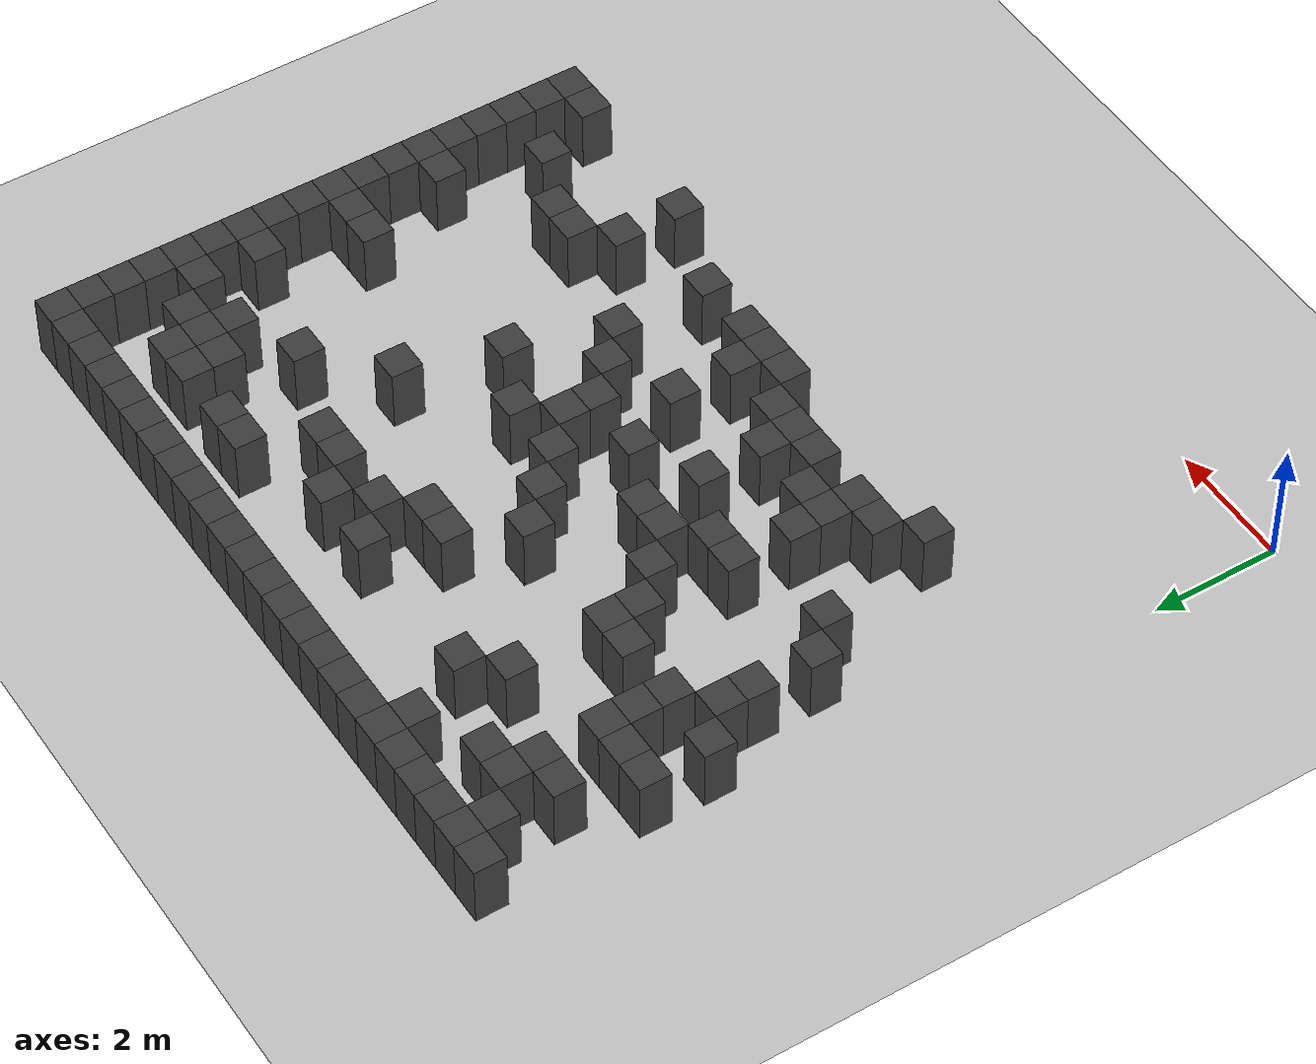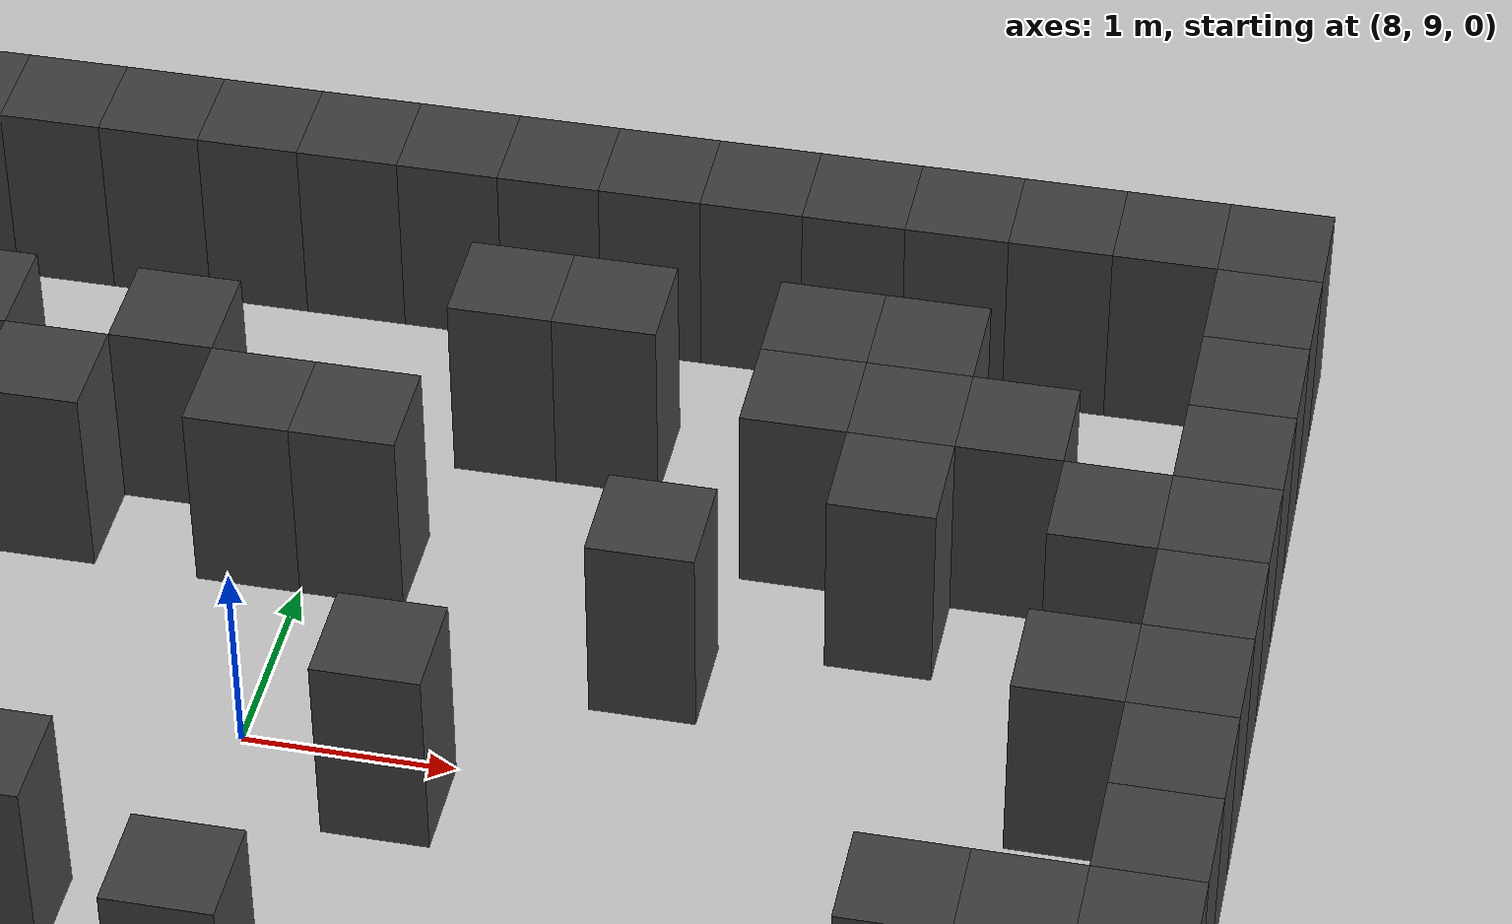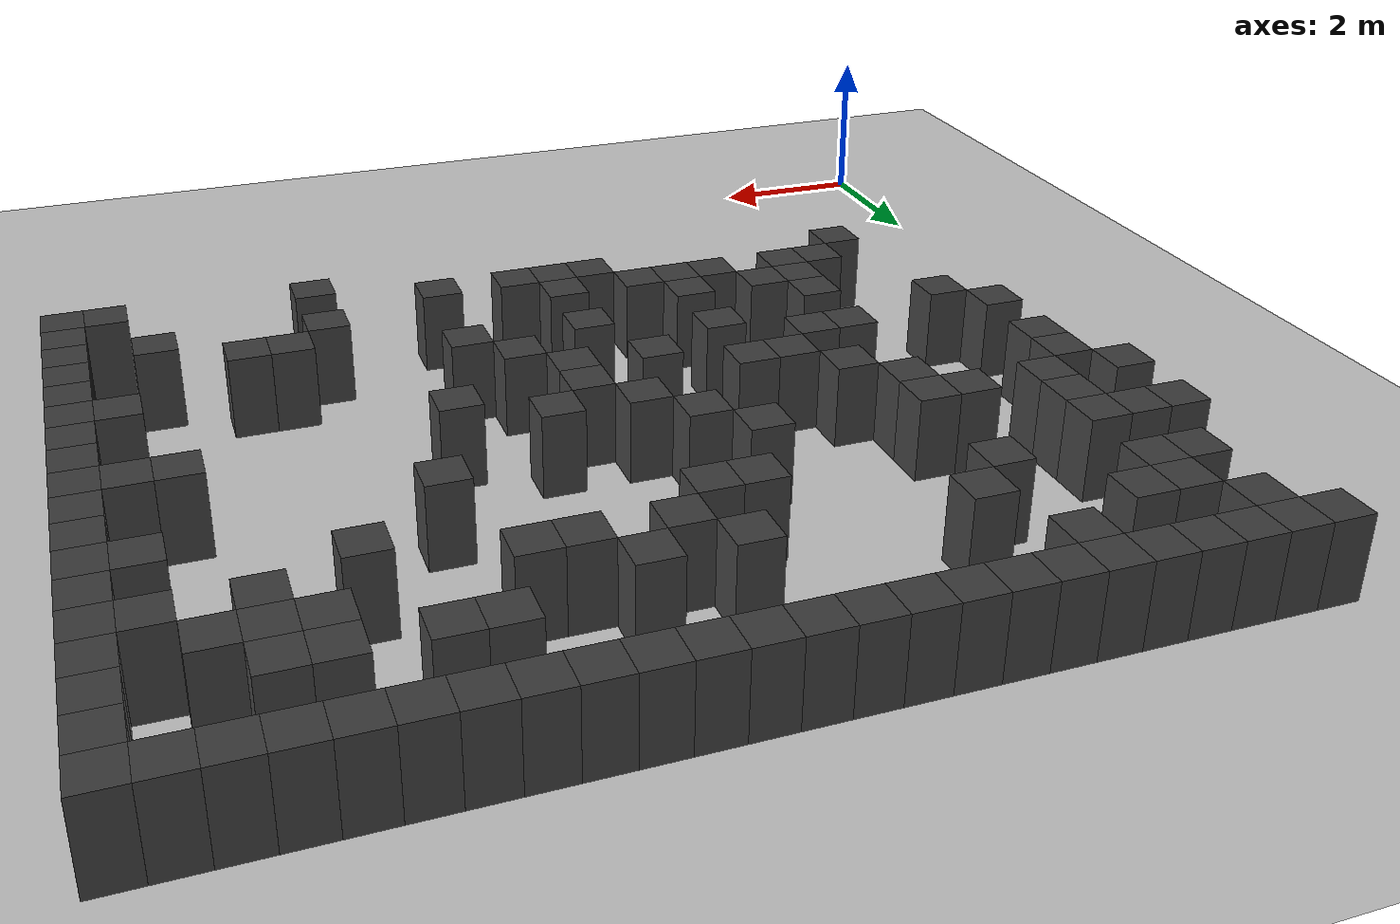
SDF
<sdf version="1.7">
 <world name="map_4822">
  <model name="ground_plane">
   <static>true</static>
   <link name="link">
    <collision name="collision">
     <geometry><plane><normal>0 0 1</normal><size>200 200</size></plane></geometry>
    </collision>
    <visual name="visual">
     <geometry><plane><normal>0 0 1</normal><size>200 200</size></plane></geometry>
     <material><ambient>0.8 0.8 0.8 1</ambient><diffuse>0.8 0.8 0.8 1</diffuse></material>
    </visual>
   </link>
  </model>
  <model name="maze_environment">
   <static>true</static>
   <link name="wall_26">
    <pose>0.750 12.250 0.500 0 0 0</pose>
    <collision name="col"><geometry><box><size>0.5 0.5 1.0</size></box></geometry></collision>
    <visual name="vis">
     <geometry><box><size>0.5 0.5 1.0</size></box></geometry>
     <material><ambient>0.15 0.15 0.15 1</ambient><diffuse>0.25 0.25 0.25 1</diffuse></material>
    </visual>
   </link>
   <link name="wall_27">
    <pose>1.250 12.250 0.500 0 0 0</pose>
    <collision name="col"><geometry><box><size>0.5 0.5 1.0</size></box></geometry></collision>
    <visual name="vis">
     <geometry><box><size>0.5 0.5 1.0</size></box></geometry>
     <material><ambient>0.15 0.15 0.15 1</ambient><diffuse>0.25 0.25 0.25 1</diffuse></material>
    </visual>
   </link>
   <link name="wall_28">
    <pose>1.750 12.250 0.500 0 0 0</pose>
    <collision name="col"><geometry><box><size>0.5 0.5 1.0</size></box></geometry></collision>
    <visual name="vis">
     <geometry><box><size>0.5 0.5 1.0</size></box></geometry>
     <material><ambient>0.15 0.15 0.15 1</ambient><diffuse>0.25 0.25 0.25 1</diffuse></material>
    </visual>
   </link>
   <link name="wall_29">
    <pose>2.250 12.250 0.500 0 0 0</pose>
    <collision name="col"><geometry><box><size>0.5 0.5 1.0</size></box></geometry></collision>
    <visual name="vis">
     <geometry><box><size>0.5 0.5 1.0</size></box></geometry>
     <material><ambient>0.15 0.15 0.15 1</ambient><diffuse>0.25 0.25 0.25 1</diffuse></material>
    </visual>
   </link>
   <link name="wall_30">
    <pose>2.750 12.250 0.500 0 0 0</pose>
    <collision name="col"><geometry><box><size>0.5 0.5 1.0</size></box></geometry></collision>
    <visual name="vis">
     <geometry><box><size>0.5 0.5 1.0</size></box></geometry>
     <material><ambient>0.15 0.15 0.15 1</ambient><diffuse>0.25 0.25 0.25 1</diffuse></material>
    </visual>
   </link>
   <link name="wall_31">
    <pose>3.250 12.250 0.500 0 0 0</pose>
    <collision name="col"><geometry><box><size>0.5 0.5 1.0</size></box></geometry></collision>
    <visual name="vis">
     <geometry><box><size>0.5 0.5 1.0</size></box></geometry>
     <material><ambient>0.15 0.15 0.15 1</ambient><diffuse>0.25 0.25 0.25 1</diffuse></material>
    </visual>
   </link>
   <link name="wall_32">
    <pose>3.750 12.250 0.500 0 0 0</pose>
    <collision name="col"><geometry><box><size>0.5 0.5 1.0</size></box></geometry></collision>
    <visual name="vis">
     <geometry><box><size>0.5 0.5 1.0</size></box></geometry>
     <material><ambient>0.15 0.15 0.15 1</ambient><diffuse>0.25 0.25 0.25 1</diffuse></material>
    </visual>
   </link>
   <link name="wall_33">
    <pose>4.250 12.250 0.500 0 0 0</pose>
    <collision name="col"><geometry><box><size>0.5 0.5 1.0</size></box></geometry></collision>
    <visual name="vis">
     <geometry><box><size>0.5 0.5 1.0</size></box></geometry>
     <material><ambient>0.15 0.15 0.15 1</ambient><diffuse>0.25 0.25 0.25 1</diffuse></material>
    </visual>
   </link>
   <link name="wall_34">
    <pose>4.750 12.250 0.500 0 0 0</pose>
    <collision name="col"><geometry><box><size>0.5 0.5 1.0</size></box></geometry></collision>
    <visual name="vis">
     <geometry><box><size>0.5 0.5 1.0</size></box></geometry>
     <material><ambient>0.15 0.15 0.15 1</ambient><diffuse>0.25 0.25 0.25 1</diffuse></material>
    </visual>
   </link>
   <link name="wall_35">
    <pose>5.250 12.250 0.500 0 0 0</pose>
    <collision name="col"><geometry><box><size>0.5 0.5 1.0</size></box></geometry></collision>
    <visual name="vis">
     <geometry><box><size>0.5 0.5 1.0</size></box></geometry>
     <material><ambient>0.15 0.15 0.15 1</ambient><diffuse>0.25 0.25 0.25 1</diffuse></material>
    </visual>
   </link>
   <link name="wall_36">
    <pose>5.750 12.250 0.500 0 0 0</pose>
    <collision name="col"><geometry><box><size>0.5 0.5 1.0</size></box></geometry></collision>
    <visual name="vis">
     <geometry><box><size>0.5 0.5 1.0</size></box></geometry>
     <material><ambient>0.15 0.15 0.15 1</ambient><diffuse>0.25 0.25 0.25 1</diffuse></material>
    </visual>
   </link>
   <link name="wall_37">
    <pose>6.250 12.250 0.500 0 0 0</pose>
    <collision name="col"><geometry><box><size>0.5 0.5 1.0</size></box></geometry></collision>
    <visual name="vis">
     <geometry><box><size>0.5 0.5 1.0</size></box></geometry>
     <material><ambient>0.15 0.15 0.15 1</ambient><diffuse>0.25 0.25 0.25 1</diffuse></material>
    </visual>
   </link>
   <link name="wall_38">
    <pose>6.750 12.250 0.500 0 0 0</pose>
    <collision name="col"><geometry><box><size>0.5 0.5 1.0</size></box></geometry></collision>
    <visual name="vis">
     <geometry><box><size>0.5 0.5 1.0</size></box></geometry>
     <material><ambient>0.15 0.15 0.15 1</ambient><diffuse>0.25 0.25 0.25 1</diffuse></material>
    </visual>
   </link>
   <link name="wall_39">
    <pose>7.250 12.250 0.500 0 0 0</pose>
    <collision name="col"><geometry><box><size>0.5 0.5 1.0</size></box></geometry></collision>
    <visual name="vis">
     <geometry><box><size>0.5 0.5 1.0</size></box></geometry>
     <material><ambient>0.15 0.15 0.15 1</ambient><diffuse>0.25 0.25 0.25 1</diffuse></material>
    </visual>
   </link>
   <link name="wall_40">
    <pose>7.750 12.250 0.500 0 0 0</pose>
    <collision name="col"><geometry><box><size>0.5 0.5 1.0</size></box></geometry></collision>
    <visual name="vis">
     <geometry><box><size>0.5 0.5 1.0</size></box></geometry>
     <material><ambient>0.15 0.15 0.15 1</ambient><diffuse>0.25 0.25 0.25 1</diffuse></material>
    </visual>
   </link>
   <link name="wall_41">
    <pose>8.250 12.250 0.500 0 0 0</pose>
    <collision name="col"><geometry><box><size>0.5 0.5 1.0</size></box></geometry></collision>
    <visual name="vis">
     <geometry><box><size>0.5 0.5 1.0</size></box></geometry>
     <material><ambient>0.15 0.15 0.15 1</ambient><diffuse>0.25 0.25 0.25 1</diffuse></material>
    </visual>
   </link>
   <link name="wall_42">
    <pose>8.750 12.250 0.500 0 0 0</pose>
    <collision name="col"><geometry><box><size>0.5 0.5 1.0</size></box></geometry></collision>
    <visual name="vis">
     <geometry><box><size>0.5 0.5 1.0</size></box></geometry>
     <material><ambient>0.15 0.15 0.15 1</ambient><diffuse>0.25 0.25 0.25 1</diffuse></material>
    </visual>
   </link>
   <link name="wall_43">
    <pose>9.250 12.250 0.500 0 0 0</pose>
    <collision name="col"><geometry><box><size>0.5 0.5 1.0</size></box></geometry></collision>
    <visual name="vis">
     <geometry><box><size>0.5 0.5 1.0</size></box></geometry>
     <material><ambient>0.15 0.15 0.15 1</ambient><diffuse>0.25 0.25 0.25 1</diffuse></material>
    </visual>
   </link>
   <link name="wall_44">
    <pose>9.750 12.250 0.500 0 0 0</pose>
    <collision name="col"><geometry><box><size>0.5 0.5 1.0</size></box></geometry></collision>
    <visual name="vis">
     <geometry><box><size>0.5 0.5 1.0</size></box></geometry>
     <material><ambient>0.15 0.15 0.15 1</ambient><diffuse>0.25 0.25 0.25 1</diffuse></material>
    </visual>
   </link>
   <link name="wall_45">
    <pose>10.250 12.250 0.500 0 0 0</pose>
    <collision name="col"><geometry><box><size>0.5 0.5 1.0</size></box></geometry></collision>
    <visual name="vis">
     <geometry><box><size>0.5 0.5 1.0</size></box></geometry>
     <material><ambient>0.15 0.15 0.15 1</ambient><diffuse>0.25 0.25 0.25 1</diffuse></material>
    </visual>
   </link>
   <link name="wall_46">
    <pose>10.750 12.250 0.500 0 0 0</pose>
    <collision name="col"><geometry><box><size>0.5 0.5 1.0</size></box></geometry></collision>
    <visual name="vis">
     <geometry><box><size>0.5 0.5 1.0</size></box></geometry>
     <material><ambient>0.15 0.15 0.15 1</ambient><diffuse>0.25 0.25 0.25 1</diffuse></material>
    </visual>
   </link>
   <link name="wall_47">
    <pose>11.250 12.250 0.500 0 0 0</pose>
    <collision name="col"><geometry><box><size>0.5 0.5 1.0</size></box></geometry></collision>
    <visual name="vis">
     <geometry><box><size>0.5 0.5 1.0</size></box></geometry>
     <material><ambient>0.15 0.15 0.15 1</ambient><diffuse>0.25 0.25 0.25 1</diffuse></material>
    </visual>
   </link>
   <link name="wall_48">
    <pose>11.750 12.250 0.500 0 0 0</pose>
    <collision name="col"><geometry><box><size>0.5 0.5 1.0</size></box></geometry></collision>
    <visual name="vis">
     <geometry><box><size>0.5 0.5 1.0</size></box></geometry>
     <material><ambient>0.15 0.15 0.15 1</ambient><diffuse>0.25 0.25 0.25 1</diffuse></material>
    </visual>
   </link>
   <link name="wall_49">
    <pose>12.250 12.250 0.500 0 0 0</pose>
    <collision name="col"><geometry><box><size>0.5 0.5 1.0</size></box></geometry></collision>
    <visual name="vis">
     <geometry><box><size>0.5 0.5 1.0</size></box></geometry>
     <material><ambient>0.15 0.15 0.15 1</ambient><diffuse>0.25 0.25 0.25 1</diffuse></material>
    </visual>
   </link>
   <link name="wall_54">
    <pose>1.250 11.750 0.500 0 0 0</pose>
    <collision name="col"><geometry><box><size>0.5 0.5 1.0</size></box></geometry></collision>
    <visual name="vis">
     <geometry><box><size>0.5 0.5 1.0</size></box></geometry>
     <material><ambient>0.15 0.15 0.15 1</ambient><diffuse>0.25 0.25 0.25 1</diffuse></material>
    </visual>
   </link>
   <link name="wall_55">
    <pose>3.250 11.750 0.500 0 0 0</pose>
    <collision name="col"><geometry><box><size>0.5 0.5 1.0</size></box></geometry></collision>
    <visual name="vis">
     <geometry><box><size>0.5 0.5 1.0</size></box></geometry>
     <material><ambient>0.15 0.15 0.15 1</ambient><diffuse>0.25 0.25 0.25 1</diffuse></material>
    </visual>
   </link>
   <link name="wall_56">
    <pose>12.250 11.750 0.500 0 0 0</pose>
    <collision name="col"><geometry><box><size>0.5 0.5 1.0</size></box></geometry></collision>
    <visual name="vis">
     <geometry><box><size>0.5 0.5 1.0</size></box></geometry>
     <material><ambient>0.15 0.15 0.15 1</ambient><diffuse>0.25 0.25 0.25 1</diffuse></material>
    </visual>
   </link>
   <link name="wall_66">
    <pose>1.750 11.250 0.500 0 0 0</pose>
    <collision name="col"><geometry><box><size>0.5 0.5 1.0</size></box></geometry></collision>
    <visual name="vis">
     <geometry><box><size>0.5 0.5 1.0</size></box></geometry>
     <material><ambient>0.15 0.15 0.15 1</ambient><diffuse>0.25 0.25 0.25 1</diffuse></material>
    </visual>
   </link>
   <link name="wall_67">
    <pose>2.250 11.250 0.500 0 0 0</pose>
    <collision name="col"><geometry><box><size>0.5 0.5 1.0</size></box></geometry></collision>
    <visual name="vis">
     <geometry><box><size>0.5 0.5 1.0</size></box></geometry>
     <material><ambient>0.15 0.15 0.15 1</ambient><diffuse>0.25 0.25 0.25 1</diffuse></material>
    </visual>
   </link>
   <link name="wall_68">
    <pose>8.750 11.250 0.500 0 0 0</pose>
    <collision name="col"><geometry><box><size>0.5 0.5 1.0</size></box></geometry></collision>
    <visual name="vis">
     <geometry><box><size>0.5 0.5 1.0</size></box></geometry>
     <material><ambient>0.15 0.15 0.15 1</ambient><diffuse>0.25 0.25 0.25 1</diffuse></material>
    </visual>
   </link>
   <link name="wall_69">
    <pose>9.250 11.250 0.500 0 0 0</pose>
    <collision name="col"><geometry><box><size>0.5 0.5 1.0</size></box></geometry></collision>
    <visual name="vis">
     <geometry><box><size>0.5 0.5 1.0</size></box></geometry>
     <material><ambient>0.15 0.15 0.15 1</ambient><diffuse>0.25 0.25 0.25 1</diffuse></material>
    </visual>
   </link>
   <link name="wall_70">
    <pose>10.250 11.250 0.500 0 0 0</pose>
    <collision name="col"><geometry><box><size>0.5 0.5 1.0</size></box></geometry></collision>
    <visual name="vis">
     <geometry><box><size>0.5 0.5 1.0</size></box></geometry>
     <material><ambient>0.15 0.15 0.15 1</ambient><diffuse>0.25 0.25 0.25 1</diffuse></material>
    </visual>
   </link>
   <link name="wall_71">
    <pose>10.750 11.250 0.500 0 0 0</pose>
    <collision name="col"><geometry><box><size>0.5 0.5 1.0</size></box></geometry></collision>
    <visual name="vis">
     <geometry><box><size>0.5 0.5 1.0</size></box></geometry>
     <material><ambient>0.15 0.15 0.15 1</ambient><diffuse>0.25 0.25 0.25 1</diffuse></material>
    </visual>
   </link>
   <link name="wall_72">
    <pose>12.250 11.250 0.500 0 0 0</pose>
    <collision name="col"><geometry><box><size>0.5 0.5 1.0</size></box></geometry></collision>
    <visual name="vis">
     <geometry><box><size>0.5 0.5 1.0</size></box></geometry>
     <material><ambient>0.15 0.15 0.15 1</ambient><diffuse>0.25 0.25 0.25 1</diffuse></material>
    </visual>
   </link>
   <link name="wall_80">
    <pose>1.250 10.750 0.500 0 0 0</pose>
    <collision name="col"><geometry><box><size>0.5 0.5 1.0</size></box></geometry></collision>
    <visual name="vis">
     <geometry><box><size>0.5 0.5 1.0</size></box></geometry>
     <material><ambient>0.15 0.15 0.15 1</ambient><diffuse>0.25 0.25 0.25 1</diffuse></material>
    </visual>
   </link>
   <link name="wall_81">
    <pose>1.750 10.750 0.500 0 0 0</pose>
    <collision name="col"><geometry><box><size>0.5 0.5 1.0</size></box></geometry></collision>
    <visual name="vis">
     <geometry><box><size>0.5 0.5 1.0</size></box></geometry>
     <material><ambient>0.15 0.15 0.15 1</ambient><diffuse>0.25 0.25 0.25 1</diffuse></material>
    </visual>
   </link>
   <link name="wall_82">
    <pose>3.750 10.750 0.500 0 0 0</pose>
    <collision name="col"><geometry><box><size>0.5 0.5 1.0</size></box></geometry></collision>
    <visual name="vis">
     <geometry><box><size>0.5 0.5 1.0</size></box></geometry>
     <material><ambient>0.15 0.15 0.15 1</ambient><diffuse>0.25 0.25 0.25 1</diffuse></material>
    </visual>
   </link>
   <link name="wall_83">
    <pose>6.250 10.750 0.500 0 0 0</pose>
    <collision name="col"><geometry><box><size>0.5 0.5 1.0</size></box></geometry></collision>
    <visual name="vis">
     <geometry><box><size>0.5 0.5 1.0</size></box></geometry>
     <material><ambient>0.15 0.15 0.15 1</ambient><diffuse>0.25 0.25 0.25 1</diffuse></material>
    </visual>
   </link>
   <link name="wall_84">
    <pose>7.250 10.750 0.500 0 0 0</pose>
    <collision name="col"><geometry><box><size>0.5 0.5 1.0</size></box></geometry></collision>
    <visual name="vis">
     <geometry><box><size>0.5 0.5 1.0</size></box></geometry>
     <material><ambient>0.15 0.15 0.15 1</ambient><diffuse>0.25 0.25 0.25 1</diffuse></material>
    </visual>
   </link>
   <link name="wall_85">
    <pose>10.250 10.750 0.500 0 0 0</pose>
    <collision name="col"><geometry><box><size>0.5 0.5 1.0</size></box></geometry></collision>
    <visual name="vis">
     <geometry><box><size>0.5 0.5 1.0</size></box></geometry>
     <material><ambient>0.15 0.15 0.15 1</ambient><diffuse>0.25 0.25 0.25 1</diffuse></material>
    </visual>
   </link>
   <link name="wall_86">
    <pose>10.750 10.750 0.500 0 0 0</pose>
    <collision name="col"><geometry><box><size>0.5 0.5 1.0</size></box></geometry></collision>
    <visual name="vis">
     <geometry><box><size>0.5 0.5 1.0</size></box></geometry>
     <material><ambient>0.15 0.15 0.15 1</ambient><diffuse>0.25 0.25 0.25 1</diffuse></material>
    </visual>
   </link>
   <link name="wall_87">
    <pose>11.250 10.750 0.500 0 0 0</pose>
    <collision name="col"><geometry><box><size>0.5 0.5 1.0</size></box></geometry></collision>
    <visual name="vis">
     <geometry><box><size>0.5 0.5 1.0</size></box></geometry>
     <material><ambient>0.15 0.15 0.15 1</ambient><diffuse>0.25 0.25 0.25 1</diffuse></material>
    </visual>
   </link>
   <link name="wall_88">
    <pose>12.250 10.750 0.500 0 0 0</pose>
    <collision name="col"><geometry><box><size>0.5 0.5 1.0</size></box></geometry></collision>
    <visual name="vis">
     <geometry><box><size>0.5 0.5 1.0</size></box></geometry>
     <material><ambient>0.15 0.15 0.15 1</ambient><diffuse>0.25 0.25 0.25 1</diffuse></material>
    </visual>
   </link>
   <link name="wall_95">
    <pose>3.250 10.250 0.500 0 0 0</pose>
    <collision name="col"><geometry><box><size>0.5 0.5 1.0</size></box></geometry></collision>
    <visual name="vis">
     <geometry><box><size>0.5 0.5 1.0</size></box></geometry>
     <material><ambient>0.15 0.15 0.15 1</ambient><diffuse>0.25 0.25 0.25 1</diffuse></material>
    </visual>
   </link>
   <link name="wall_96">
    <pose>6.750 10.250 0.500 0 0 0</pose>
    <collision name="col"><geometry><box><size>0.5 0.5 1.0</size></box></geometry></collision>
    <visual name="vis">
     <geometry><box><size>0.5 0.5 1.0</size></box></geometry>
     <material><ambient>0.15 0.15 0.15 1</ambient><diffuse>0.25 0.25 0.25 1</diffuse></material>
    </visual>
   </link>
   <link name="wall_97">
    <pose>7.750 10.250 0.500 0 0 0</pose>
    <collision name="col"><geometry><box><size>0.5 0.5 1.0</size></box></geometry></collision>
    <visual name="vis">
     <geometry><box><size>0.5 0.5 1.0</size></box></geometry>
     <material><ambient>0.15 0.15 0.15 1</ambient><diffuse>0.25 0.25 0.25 1</diffuse></material>
    </visual>
   </link>
   <link name="wall_98">
    <pose>8.250 10.250 0.500 0 0 0</pose>
    <collision name="col"><geometry><box><size>0.5 0.5 1.0</size></box></geometry></collision>
    <visual name="vis">
     <geometry><box><size>0.5 0.5 1.0</size></box></geometry>
     <material><ambient>0.15 0.15 0.15 1</ambient><diffuse>0.25 0.25 0.25 1</diffuse></material>
    </visual>
   </link>
   <link name="wall_99">
    <pose>10.750 10.250 0.500 0 0 0</pose>
    <collision name="col"><geometry><box><size>0.5 0.5 1.0</size></box></geometry></collision>
    <visual name="vis">
     <geometry><box><size>0.5 0.5 1.0</size></box></geometry>
     <material><ambient>0.15 0.15 0.15 1</ambient><diffuse>0.25 0.25 0.25 1</diffuse></material>
    </visual>
   </link>
   <link name="wall_100">
    <pose>11.750 10.250 0.500 0 0 0</pose>
    <collision name="col"><geometry><box><size>0.5 0.5 1.0</size></box></geometry></collision>
    <visual name="vis">
     <geometry><box><size>0.5 0.5 1.0</size></box></geometry>
     <material><ambient>0.15 0.15 0.15 1</ambient><diffuse>0.25 0.25 0.25 1</diffuse></material>
    </visual>
   </link>
   <link name="wall_101">
    <pose>12.250 10.250 0.500 0 0 0</pose>
    <collision name="col"><geometry><box><size>0.5 0.5 1.0</size></box></geometry></collision>
    <visual name="vis">
     <geometry><box><size>0.5 0.5 1.0</size></box></geometry>
     <material><ambient>0.15 0.15 0.15 1</ambient><diffuse>0.25 0.25 0.25 1</diffuse></material>
    </visual>
   </link>
   <link name="wall_109">
    <pose>0.750 9.750 0.500 0 0 0</pose>
    <collision name="col"><geometry><box><size>0.5 0.5 1.0</size></box></geometry></collision>
    <visual name="vis">
     <geometry><box><size>0.5 0.5 1.0</size></box></geometry>
     <material><ambient>0.15 0.15 0.15 1</ambient><diffuse>0.25 0.25 0.25 1</diffuse></material>
    </visual>
   </link>
   <link name="wall_110">
    <pose>1.250 9.750 0.500 0 0 0</pose>
    <collision name="col"><geometry><box><size>0.5 0.5 1.0</size></box></geometry></collision>
    <visual name="vis">
     <geometry><box><size>0.5 0.5 1.0</size></box></geometry>
     <material><ambient>0.15 0.15 0.15 1</ambient><diffuse>0.25 0.25 0.25 1</diffuse></material>
    </visual>
   </link>
   <link name="wall_111">
    <pose>1.750 9.750 0.500 0 0 0</pose>
    <collision name="col"><geometry><box><size>0.5 0.5 1.0</size></box></geometry></collision>
    <visual name="vis">
     <geometry><box><size>0.5 0.5 1.0</size></box></geometry>
     <material><ambient>0.15 0.15 0.15 1</ambient><diffuse>0.25 0.25 0.25 1</diffuse></material>
    </visual>
   </link>
   <link name="wall_112">
    <pose>5.750 9.750 0.500 0 0 0</pose>
    <collision name="col"><geometry><box><size>0.5 0.5 1.0</size></box></geometry></collision>
    <visual name="vis">
     <geometry><box><size>0.5 0.5 1.0</size></box></geometry>
     <material><ambient>0.15 0.15 0.15 1</ambient><diffuse>0.25 0.25 0.25 1</diffuse></material>
    </visual>
   </link>
   <link name="wall_113">
    <pose>6.250 9.750 0.500 0 0 0</pose>
    <collision name="col"><geometry><box><size>0.5 0.5 1.0</size></box></geometry></collision>
    <visual name="vis">
     <geometry><box><size>0.5 0.5 1.0</size></box></geometry>
     <material><ambient>0.15 0.15 0.15 1</ambient><diffuse>0.25 0.25 0.25 1</diffuse></material>
    </visual>
   </link>
   <link name="wall_114">
    <pose>9.750 9.750 0.500 0 0 0</pose>
    <collision name="col"><geometry><box><size>0.5 0.5 1.0</size></box></geometry></collision>
    <visual name="vis">
     <geometry><box><size>0.5 0.5 1.0</size></box></geometry>
     <material><ambient>0.15 0.15 0.15 1</ambient><diffuse>0.25 0.25 0.25 1</diffuse></material>
    </visual>
   </link>
   <link name="wall_115">
    <pose>12.250 9.750 0.500 0 0 0</pose>
    <collision name="col"><geometry><box><size>0.5 0.5 1.0</size></box></geometry></collision>
    <visual name="vis">
     <geometry><box><size>0.5 0.5 1.0</size></box></geometry>
     <material><ambient>0.15 0.15 0.15 1</ambient><diffuse>0.25 0.25 0.25 1</diffuse></material>
    </visual>
   </link>
   <link name="wall_122">
    <pose>1.750 9.250 0.500 0 0 0</pose>
    <collision name="col"><geometry><box><size>0.5 0.5 1.0</size></box></geometry></collision>
    <visual name="vis">
     <geometry><box><size>0.5 0.5 1.0</size></box></geometry>
     <material><ambient>0.15 0.15 0.15 1</ambient><diffuse>0.25 0.25 0.25 1</diffuse></material>
    </visual>
   </link>
   <link name="wall_123">
    <pose>11.750 9.250 0.500 0 0 0</pose>
    <collision name="col"><geometry><box><size>0.5 0.5 1.0</size></box></geometry></collision>
    <visual name="vis">
     <geometry><box><size>0.5 0.5 1.0</size></box></geometry>
     <material><ambient>0.15 0.15 0.15 1</ambient><diffuse>0.25 0.25 0.25 1</diffuse></material>
    </visual>
   </link>
   <link name="wall_124">
    <pose>12.250 9.250 0.500 0 0 0</pose>
    <collision name="col"><geometry><box><size>0.5 0.5 1.0</size></box></geometry></collision>
    <visual name="vis">
     <geometry><box><size>0.5 0.5 1.0</size></box></geometry>
     <material><ambient>0.15 0.15 0.15 1</ambient><diffuse>0.25 0.25 0.25 1</diffuse></material>
    </visual>
   </link>
   <link name="wall_135">
    <pose>0.750 8.750 0.500 0 0 0</pose>
    <collision name="col"><geometry><box><size>0.5 0.5 1.0</size></box></geometry></collision>
    <visual name="vis">
     <geometry><box><size>0.5 0.5 1.0</size></box></geometry>
     <material><ambient>0.15 0.15 0.15 1</ambient><diffuse>0.25 0.25 0.25 1</diffuse></material>
    </visual>
   </link>
   <link name="wall_136">
    <pose>1.750 8.750 0.500 0 0 0</pose>
    <collision name="col"><geometry><box><size>0.5 0.5 1.0</size></box></geometry></collision>
    <visual name="vis">
     <geometry><box><size>0.5 0.5 1.0</size></box></geometry>
     <material><ambient>0.15 0.15 0.15 1</ambient><diffuse>0.25 0.25 0.25 1</diffuse></material>
    </visual>
   </link>
   <link name="wall_137">
    <pose>2.750 8.750 0.500 0 0 0</pose>
    <collision name="col"><geometry><box><size>0.5 0.5 1.0</size></box></geometry></collision>
    <visual name="vis">
     <geometry><box><size>0.5 0.5 1.0</size></box></geometry>
     <material><ambient>0.15 0.15 0.15 1</ambient><diffuse>0.25 0.25 0.25 1</diffuse></material>
    </visual>
   </link>
   <link name="wall_138">
    <pose>3.250 8.750 0.500 0 0 0</pose>
    <collision name="col"><geometry><box><size>0.5 0.5 1.0</size></box></geometry></collision>
    <visual name="vis">
     <geometry><box><size>0.5 0.5 1.0</size></box></geometry>
     <material><ambient>0.15 0.15 0.15 1</ambient><diffuse>0.25 0.25 0.25 1</diffuse></material>
    </visual>
   </link>
   <link name="wall_139">
    <pose>5.250 8.750 0.500 0 0 0</pose>
    <collision name="col"><geometry><box><size>0.5 0.5 1.0</size></box></geometry></collision>
    <visual name="vis">
     <geometry><box><size>0.5 0.5 1.0</size></box></geometry>
     <material><ambient>0.15 0.15 0.15 1</ambient><diffuse>0.25 0.25 0.25 1</diffuse></material>
    </visual>
   </link>
   <link name="wall_140">
    <pose>8.750 8.750 0.500 0 0 0</pose>
    <collision name="col"><geometry><box><size>0.5 0.5 1.0</size></box></geometry></collision>
    <visual name="vis">
     <geometry><box><size>0.5 0.5 1.0</size></box></geometry>
     <material><ambient>0.15 0.15 0.15 1</ambient><diffuse>0.25 0.25 0.25 1</diffuse></material>
    </visual>
   </link>
   <link name="wall_141">
    <pose>12.250 8.750 0.500 0 0 0</pose>
    <collision name="col"><geometry><box><size>0.5 0.5 1.0</size></box></geometry></collision>
    <visual name="vis">
     <geometry><box><size>0.5 0.5 1.0</size></box></geometry>
     <material><ambient>0.15 0.15 0.15 1</ambient><diffuse>0.25 0.25 0.25 1</diffuse></material>
    </visual>
   </link>
   <link name="wall_147">
    <pose>1.250 8.250 0.500 0 0 0</pose>
    <collision name="col"><geometry><box><size>0.5 0.5 1.0</size></box></geometry></collision>
    <visual name="vis">
     <geometry><box><size>0.5 0.5 1.0</size></box></geometry>
     <material><ambient>0.15 0.15 0.15 1</ambient><diffuse>0.25 0.25 0.25 1</diffuse></material>
    </visual>
   </link>
   <link name="wall_148">
    <pose>3.250 8.250 0.500 0 0 0</pose>
    <collision name="col"><geometry><box><size>0.5 0.5 1.0</size></box></geometry></collision>
    <visual name="vis">
     <geometry><box><size>0.5 0.5 1.0</size></box></geometry>
     <material><ambient>0.15 0.15 0.15 1</ambient><diffuse>0.25 0.25 0.25 1</diffuse></material>
    </visual>
   </link>
   <link name="wall_149">
    <pose>5.750 8.250 0.500 0 0 0</pose>
    <collision name="col"><geometry><box><size>0.5 0.5 1.0</size></box></geometry></collision>
    <visual name="vis">
     <geometry><box><size>0.5 0.5 1.0</size></box></geometry>
     <material><ambient>0.15 0.15 0.15 1</ambient><diffuse>0.25 0.25 0.25 1</diffuse></material>
    </visual>
   </link>
   <link name="wall_150">
    <pose>12.250 8.250 0.500 0 0 0</pose>
    <collision name="col"><geometry><box><size>0.5 0.5 1.0</size></box></geometry></collision>
    <visual name="vis">
     <geometry><box><size>0.5 0.5 1.0</size></box></geometry>
     <material><ambient>0.15 0.15 0.15 1</ambient><diffuse>0.25 0.25 0.25 1</diffuse></material>
    </visual>
   </link>
   <link name="wall_155">
    <pose>1.250 7.750 0.500 0 0 0</pose>
    <collision name="col"><geometry><box><size>0.5 0.5 1.0</size></box></geometry></collision>
    <visual name="vis">
     <geometry><box><size>0.5 0.5 1.0</size></box></geometry>
     <material><ambient>0.15 0.15 0.15 1</ambient><diffuse>0.25 0.25 0.25 1</diffuse></material>
    </visual>
   </link>
   <link name="wall_156">
    <pose>3.750 7.750 0.500 0 0 0</pose>
    <collision name="col"><geometry><box><size>0.5 0.5 1.0</size></box></geometry></collision>
    <visual name="vis">
     <geometry><box><size>0.5 0.5 1.0</size></box></geometry>
     <material><ambient>0.15 0.15 0.15 1</ambient><diffuse>0.25 0.25 0.25 1</diffuse></material>
    </visual>
   </link>
   <link name="wall_157">
    <pose>6.250 7.750 0.500 0 0 0</pose>
    <collision name="col"><geometry><box><size>0.5 0.5 1.0</size></box></geometry></collision>
    <visual name="vis">
     <geometry><box><size>0.5 0.5 1.0</size></box></geometry>
     <material><ambient>0.15 0.15 0.15 1</ambient><diffuse>0.25 0.25 0.25 1</diffuse></material>
    </visual>
   </link>
   <link name="wall_158">
    <pose>7.250 7.750 0.500 0 0 0</pose>
    <collision name="col"><geometry><box><size>0.5 0.5 1.0</size></box></geometry></collision>
    <visual name="vis">
     <geometry><box><size>0.5 0.5 1.0</size></box></geometry>
     <material><ambient>0.15 0.15 0.15 1</ambient><diffuse>0.25 0.25 0.25 1</diffuse></material>
    </visual>
   </link>
   <link name="wall_159">
    <pose>11.250 7.750 0.500 0 0 0</pose>
    <collision name="col"><geometry><box><size>0.5 0.5 1.0</size></box></geometry></collision>
    <visual name="vis">
     <geometry><box><size>0.5 0.5 1.0</size></box></geometry>
     <material><ambient>0.15 0.15 0.15 1</ambient><diffuse>0.25 0.25 0.25 1</diffuse></material>
    </visual>
   </link>
   <link name="wall_160">
    <pose>11.750 7.750 0.500 0 0 0</pose>
    <collision name="col"><geometry><box><size>0.5 0.5 1.0</size></box></geometry></collision>
    <visual name="vis">
     <geometry><box><size>0.5 0.5 1.0</size></box></geometry>
     <material><ambient>0.15 0.15 0.15 1</ambient><diffuse>0.25 0.25 0.25 1</diffuse></material>
    </visual>
   </link>
   <link name="wall_161">
    <pose>12.250 7.750 0.500 0 0 0</pose>
    <collision name="col"><geometry><box><size>0.5 0.5 1.0</size></box></geometry></collision>
    <visual name="vis">
     <geometry><box><size>0.5 0.5 1.0</size></box></geometry>
     <material><ambient>0.15 0.15 0.15 1</ambient><diffuse>0.25 0.25 0.25 1</diffuse></material>
    </visual>
   </link>
   <link name="wall_170">
    <pose>4.250 7.250 0.500 0 0 0</pose>
    <collision name="col"><geometry><box><size>0.5 0.5 1.0</size></box></geometry></collision>
    <visual name="vis">
     <geometry><box><size>0.5 0.5 1.0</size></box></geometry>
     <material><ambient>0.15 0.15 0.15 1</ambient><diffuse>0.25 0.25 0.25 1</diffuse></material>
    </visual>
   </link>
   <link name="wall_171">
    <pose>4.750 7.250 0.500 0 0 0</pose>
    <collision name="col"><geometry><box><size>0.5 0.5 1.0</size></box></geometry></collision>
    <visual name="vis">
     <geometry><box><size>0.5 0.5 1.0</size></box></geometry>
     <material><ambient>0.15 0.15 0.15 1</ambient><diffuse>0.25 0.25 0.25 1</diffuse></material>
    </visual>
   </link>
   <link name="wall_172">
    <pose>6.750 7.250 0.500 0 0 0</pose>
    <collision name="col"><geometry><box><size>0.5 0.5 1.0</size></box></geometry></collision>
    <visual name="vis">
     <geometry><box><size>0.5 0.5 1.0</size></box></geometry>
     <material><ambient>0.15 0.15 0.15 1</ambient><diffuse>0.25 0.25 0.25 1</diffuse></material>
    </visual>
   </link>
   <link name="wall_173">
    <pose>8.250 7.250 0.500 0 0 0</pose>
    <collision name="col"><geometry><box><size>0.5 0.5 1.0</size></box></geometry></collision>
    <visual name="vis">
     <geometry><box><size>0.5 0.5 1.0</size></box></geometry>
     <material><ambient>0.15 0.15 0.15 1</ambient><diffuse>0.25 0.25 0.25 1</diffuse></material>
    </visual>
   </link>
   <link name="wall_174">
    <pose>12.250 7.250 0.500 0 0 0</pose>
    <collision name="col"><geometry><box><size>0.5 0.5 1.0</size></box></geometry></collision>
    <visual name="vis">
     <geometry><box><size>0.5 0.5 1.0</size></box></geometry>
     <material><ambient>0.15 0.15 0.15 1</ambient><diffuse>0.25 0.25 0.25 1</diffuse></material>
    </visual>
   </link>
   <link name="wall_182">
    <pose>1.250 6.750 0.500 0 0 0</pose>
    <collision name="col"><geometry><box><size>0.5 0.5 1.0</size></box></geometry></collision>
    <visual name="vis">
     <geometry><box><size>0.5 0.5 1.0</size></box></geometry>
     <material><ambient>0.15 0.15 0.15 1</ambient><diffuse>0.25 0.25 0.25 1</diffuse></material>
    </visual>
   </link>
   <link name="wall_183">
    <pose>3.250 6.750 0.500 0 0 0</pose>
    <collision name="col"><geometry><box><size>0.5 0.5 1.0</size></box></geometry></collision>
    <visual name="vis">
     <geometry><box><size>0.5 0.5 1.0</size></box></geometry>
     <material><ambient>0.15 0.15 0.15 1</ambient><diffuse>0.25 0.25 0.25 1</diffuse></material>
    </visual>
   </link>
   <link name="wall_184">
    <pose>3.750 6.750 0.500 0 0 0</pose>
    <collision name="col"><geometry><box><size>0.5 0.5 1.0</size></box></geometry></collision>
    <visual name="vis">
     <geometry><box><size>0.5 0.5 1.0</size></box></geometry>
     <material><ambient>0.15 0.15 0.15 1</ambient><diffuse>0.25 0.25 0.25 1</diffuse></material>
    </visual>
   </link>
   <link name="wall_185">
    <pose>5.750 6.750 0.500 0 0 0</pose>
    <collision name="col"><geometry><box><size>0.5 0.5 1.0</size></box></geometry></collision>
    <visual name="vis">
     <geometry><box><size>0.5 0.5 1.0</size></box></geometry>
     <material><ambient>0.15 0.15 0.15 1</ambient><diffuse>0.25 0.25 0.25 1</diffuse></material>
    </visual>
   </link>
   <link name="wall_186">
    <pose>6.750 6.750 0.500 0 0 0</pose>
    <collision name="col"><geometry><box><size>0.5 0.5 1.0</size></box></geometry></collision>
    <visual name="vis">
     <geometry><box><size>0.5 0.5 1.0</size></box></geometry>
     <material><ambient>0.15 0.15 0.15 1</ambient><diffuse>0.25 0.25 0.25 1</diffuse></material>
    </visual>
   </link>
   <link name="wall_187">
    <pose>12.250 6.750 0.500 0 0 0</pose>
    <collision name="col"><geometry><box><size>0.5 0.5 1.0</size></box></geometry></collision>
    <visual name="vis">
     <geometry><box><size>0.5 0.5 1.0</size></box></geometry>
     <material><ambient>0.15 0.15 0.15 1</ambient><diffuse>0.25 0.25 0.25 1</diffuse></material>
    </visual>
   </link>
   <link name="wall_196">
    <pose>1.750 6.250 0.500 0 0 0</pose>
    <collision name="col"><geometry><box><size>0.5 0.5 1.0</size></box></geometry></collision>
    <visual name="vis">
     <geometry><box><size>0.5 0.5 1.0</size></box></geometry>
     <material><ambient>0.15 0.15 0.15 1</ambient><diffuse>0.25 0.25 0.25 1</diffuse></material>
    </visual>
   </link>
   <link name="wall_197">
    <pose>4.750 6.250 0.500 0 0 0</pose>
    <collision name="col"><geometry><box><size>0.5 0.5 1.0</size></box></geometry></collision>
    <visual name="vis">
     <geometry><box><size>0.5 0.5 1.0</size></box></geometry>
     <material><ambient>0.15 0.15 0.15 1</ambient><diffuse>0.25 0.25 0.25 1</diffuse></material>
    </visual>
   </link>
   <link name="wall_198">
    <pose>7.250 6.250 0.500 0 0 0</pose>
    <collision name="col"><geometry><box><size>0.5 0.5 1.0</size></box></geometry></collision>
    <visual name="vis">
     <geometry><box><size>0.5 0.5 1.0</size></box></geometry>
     <material><ambient>0.15 0.15 0.15 1</ambient><diffuse>0.25 0.25 0.25 1</diffuse></material>
    </visual>
   </link>
   <link name="wall_199">
    <pose>11.750 6.250 0.500 0 0 0</pose>
    <collision name="col"><geometry><box><size>0.5 0.5 1.0</size></box></geometry></collision>
    <visual name="vis">
     <geometry><box><size>0.5 0.5 1.0</size></box></geometry>
     <material><ambient>0.15 0.15 0.15 1</ambient><diffuse>0.25 0.25 0.25 1</diffuse></material>
    </visual>
   </link>
   <link name="wall_200">
    <pose>12.250 6.250 0.500 0 0 0</pose>
    <collision name="col"><geometry><box><size>0.5 0.5 1.0</size></box></geometry></collision>
    <visual name="vis">
     <geometry><box><size>0.5 0.5 1.0</size></box></geometry>
     <material><ambient>0.15 0.15 0.15 1</ambient><diffuse>0.25 0.25 0.25 1</diffuse></material>
    </visual>
   </link>
   <link name="wall_212">
    <pose>3.250 5.750 0.500 0 0 0</pose>
    <collision name="col"><geometry><box><size>0.5 0.5 1.0</size></box></geometry></collision>
    <visual name="vis">
     <geometry><box><size>0.5 0.5 1.0</size></box></geometry>
     <material><ambient>0.15 0.15 0.15 1</ambient><diffuse>0.25 0.25 0.25 1</diffuse></material>
    </visual>
   </link>
   <link name="wall_213">
    <pose>6.250 5.750 0.500 0 0 0</pose>
    <collision name="col"><geometry><box><size>0.5 0.5 1.0</size></box></geometry></collision>
    <visual name="vis">
     <geometry><box><size>0.5 0.5 1.0</size></box></geometry>
     <material><ambient>0.15 0.15 0.15 1</ambient><diffuse>0.25 0.25 0.25 1</diffuse></material>
    </visual>
   </link>
   <link name="wall_214">
    <pose>7.750 5.750 0.500 0 0 0</pose>
    <collision name="col"><geometry><box><size>0.5 0.5 1.0</size></box></geometry></collision>
    <visual name="vis">
     <geometry><box><size>0.5 0.5 1.0</size></box></geometry>
     <material><ambient>0.15 0.15 0.15 1</ambient><diffuse>0.25 0.25 0.25 1</diffuse></material>
    </visual>
   </link>
   <link name="wall_215">
    <pose>12.250 5.750 0.500 0 0 0</pose>
    <collision name="col"><geometry><box><size>0.5 0.5 1.0</size></box></geometry></collision>
    <visual name="vis">
     <geometry><box><size>0.5 0.5 1.0</size></box></geometry>
     <material><ambient>0.15 0.15 0.15 1</ambient><diffuse>0.25 0.25 0.25 1</diffuse></material>
    </visual>
   </link>
   <link name="wall_222">
    <pose>3.250 5.250 0.500 0 0 0</pose>
    <collision name="col"><geometry><box><size>0.5 0.5 1.0</size></box></geometry></collision>
    <visual name="vis">
     <geometry><box><size>0.5 0.5 1.0</size></box></geometry>
     <material><ambient>0.15 0.15 0.15 1</ambient><diffuse>0.25 0.25 0.25 1</diffuse></material>
    </visual>
   </link>
   <link name="wall_223">
    <pose>3.750 5.250 0.500 0 0 0</pose>
    <collision name="col"><geometry><box><size>0.5 0.5 1.0</size></box></geometry></collision>
    <visual name="vis">
     <geometry><box><size>0.5 0.5 1.0</size></box></geometry>
     <material><ambient>0.15 0.15 0.15 1</ambient><diffuse>0.25 0.25 0.25 1</diffuse></material>
    </visual>
   </link>
   <link name="wall_224">
    <pose>4.750 5.250 0.500 0 0 0</pose>
    <collision name="col"><geometry><box><size>0.5 0.5 1.0</size></box></geometry></collision>
    <visual name="vis">
     <geometry><box><size>0.5 0.5 1.0</size></box></geometry>
     <material><ambient>0.15 0.15 0.15 1</ambient><diffuse>0.25 0.25 0.25 1</diffuse></material>
    </visual>
   </link>
   <link name="wall_225">
    <pose>9.750 5.250 0.500 0 0 0</pose>
    <collision name="col"><geometry><box><size>0.5 0.5 1.0</size></box></geometry></collision>
    <visual name="vis">
     <geometry><box><size>0.5 0.5 1.0</size></box></geometry>
     <material><ambient>0.15 0.15 0.15 1</ambient><diffuse>0.25 0.25 0.25 1</diffuse></material>
    </visual>
   </link>
   <link name="wall_226">
    <pose>10.250 5.250 0.500 0 0 0</pose>
    <collision name="col"><geometry><box><size>0.5 0.5 1.0</size></box></geometry></collision>
    <visual name="vis">
     <geometry><box><size>0.5 0.5 1.0</size></box></geometry>
     <material><ambient>0.15 0.15 0.15 1</ambient><diffuse>0.25 0.25 0.25 1</diffuse></material>
    </visual>
   </link>
   <link name="wall_227">
    <pose>12.250 5.250 0.500 0 0 0</pose>
    <collision name="col"><geometry><box><size>0.5 0.5 1.0</size></box></geometry></collision>
    <visual name="vis">
     <geometry><box><size>0.5 0.5 1.0</size></box></geometry>
     <material><ambient>0.15 0.15 0.15 1</ambient><diffuse>0.25 0.25 0.25 1</diffuse></material>
    </visual>
   </link>
   <link name="wall_235">
    <pose>2.750 4.750 0.500 0 0 0</pose>
    <collision name="col"><geometry><box><size>0.5 0.5 1.0</size></box></geometry></collision>
    <visual name="vis">
     <geometry><box><size>0.5 0.5 1.0</size></box></geometry>
     <material><ambient>0.15 0.15 0.15 1</ambient><diffuse>0.25 0.25 0.25 1</diffuse></material>
    </visual>
   </link>
   <link name="wall_236">
    <pose>3.250 4.750 0.500 0 0 0</pose>
    <collision name="col"><geometry><box><size>0.5 0.5 1.0</size></box></geometry></collision>
    <visual name="vis">
     <geometry><box><size>0.5 0.5 1.0</size></box></geometry>
     <material><ambient>0.15 0.15 0.15 1</ambient><diffuse>0.25 0.25 0.25 1</diffuse></material>
    </visual>
   </link>
   <link name="wall_237">
    <pose>4.250 4.750 0.500 0 0 0</pose>
    <collision name="col"><geometry><box><size>0.5 0.5 1.0</size></box></geometry></collision>
    <visual name="vis">
     <geometry><box><size>0.5 0.5 1.0</size></box></geometry>
     <material><ambient>0.15 0.15 0.15 1</ambient><diffuse>0.25 0.25 0.25 1</diffuse></material>
    </visual>
   </link>
   <link name="wall_238">
    <pose>4.750 4.750 0.500 0 0 0</pose>
    <collision name="col"><geometry><box><size>0.5 0.5 1.0</size></box></geometry></collision>
    <visual name="vis">
     <geometry><box><size>0.5 0.5 1.0</size></box></geometry>
     <material><ambient>0.15 0.15 0.15 1</ambient><diffuse>0.25 0.25 0.25 1</diffuse></material>
    </visual>
   </link>
   <link name="wall_239">
    <pose>5.250 4.750 0.500 0 0 0</pose>
    <collision name="col"><geometry><box><size>0.5 0.5 1.0</size></box></geometry></collision>
    <visual name="vis">
     <geometry><box><size>0.5 0.5 1.0</size></box></geometry>
     <material><ambient>0.15 0.15 0.15 1</ambient><diffuse>0.25 0.25 0.25 1</diffuse></material>
    </visual>
   </link>
   <link name="wall_240">
    <pose>6.250 4.750 0.500 0 0 0</pose>
    <collision name="col"><geometry><box><size>0.5 0.5 1.0</size></box></geometry></collision>
    <visual name="vis">
     <geometry><box><size>0.5 0.5 1.0</size></box></geometry>
     <material><ambient>0.15 0.15 0.15 1</ambient><diffuse>0.25 0.25 0.25 1</diffuse></material>
    </visual>
   </link>
   <link name="wall_241">
    <pose>9.250 4.750 0.500 0 0 0</pose>
    <collision name="col"><geometry><box><size>0.5 0.5 1.0</size></box></geometry></collision>
    <visual name="vis">
     <geometry><box><size>0.5 0.5 1.0</size></box></geometry>
     <material><ambient>0.15 0.15 0.15 1</ambient><diffuse>0.25 0.25 0.25 1</diffuse></material>
    </visual>
   </link>
   <link name="wall_242">
    <pose>11.250 4.750 0.500 0 0 0</pose>
    <collision name="col"><geometry><box><size>0.5 0.5 1.0</size></box></geometry></collision>
    <visual name="vis">
     <geometry><box><size>0.5 0.5 1.0</size></box></geometry>
     <material><ambient>0.15 0.15 0.15 1</ambient><diffuse>0.25 0.25 0.25 1</diffuse></material>
    </visual>
   </link>
   <link name="wall_243">
    <pose>12.250 4.750 0.500 0 0 0</pose>
    <collision name="col"><geometry><box><size>0.5 0.5 1.0</size></box></geometry></collision>
    <visual name="vis">
     <geometry><box><size>0.5 0.5 1.0</size></box></geometry>
     <material><ambient>0.15 0.15 0.15 1</ambient><diffuse>0.25 0.25 0.25 1</diffuse></material>
    </visual>
   </link>
   <link name="wall_251">
    <pose>2.250 4.250 0.500 0 0 0</pose>
    <collision name="col"><geometry><box><size>0.5 0.5 1.0</size></box></geometry></collision>
    <visual name="vis">
     <geometry><box><size>0.5 0.5 1.0</size></box></geometry>
     <material><ambient>0.15 0.15 0.15 1</ambient><diffuse>0.25 0.25 0.25 1</diffuse></material>
    </visual>
   </link>
   <link name="wall_252">
    <pose>5.750 4.250 0.500 0 0 0</pose>
    <collision name="col"><geometry><box><size>0.5 0.5 1.0</size></box></geometry></collision>
    <visual name="vis">
     <geometry><box><size>0.5 0.5 1.0</size></box></geometry>
     <material><ambient>0.15 0.15 0.15 1</ambient><diffuse>0.25 0.25 0.25 1</diffuse></material>
    </visual>
   </link>
   <link name="wall_253">
    <pose>6.250 4.250 0.500 0 0 0</pose>
    <collision name="col"><geometry><box><size>0.5 0.5 1.0</size></box></geometry></collision>
    <visual name="vis">
     <geometry><box><size>0.5 0.5 1.0</size></box></geometry>
     <material><ambient>0.15 0.15 0.15 1</ambient><diffuse>0.25 0.25 0.25 1</diffuse></material>
    </visual>
   </link>
   <link name="wall_254">
    <pose>6.750 4.250 0.500 0 0 0</pose>
    <collision name="col"><geometry><box><size>0.5 0.5 1.0</size></box></geometry></collision>
    <visual name="vis">
     <geometry><box><size>0.5 0.5 1.0</size></box></geometry>
     <material><ambient>0.15 0.15 0.15 1</ambient><diffuse>0.25 0.25 0.25 1</diffuse></material>
    </visual>
   </link>
   <link name="wall_255">
    <pose>7.750 4.250 0.500 0 0 0</pose>
    <collision name="col"><geometry><box><size>0.5 0.5 1.0</size></box></geometry></collision>
    <visual name="vis">
     <geometry><box><size>0.5 0.5 1.0</size></box></geometry>
     <material><ambient>0.15 0.15 0.15 1</ambient><diffuse>0.25 0.25 0.25 1</diffuse></material>
    </visual>
   </link>
   <link name="wall_256">
    <pose>12.250 4.250 0.500 0 0 0</pose>
    <collision name="col"><geometry><box><size>0.5 0.5 1.0</size></box></geometry></collision>
    <visual name="vis">
     <geometry><box><size>0.5 0.5 1.0</size></box></geometry>
     <material><ambient>0.15 0.15 0.15 1</ambient><diffuse>0.25 0.25 0.25 1</diffuse></material>
    </visual>
   </link>
   <link name="wall_266">
    <pose>9.250 3.750 0.500 0 0 0</pose>
    <collision name="col"><geometry><box><size>0.5 0.5 1.0</size></box></geometry></collision>
    <visual name="vis">
     <geometry><box><size>0.5 0.5 1.0</size></box></geometry>
     <material><ambient>0.15 0.15 0.15 1</ambient><diffuse>0.25 0.25 0.25 1</diffuse></material>
    </visual>
   </link>
   <link name="wall_267">
    <pose>11.750 3.750 0.500 0 0 0</pose>
    <collision name="col"><geometry><box><size>0.5 0.5 1.0</size></box></geometry></collision>
    <visual name="vis">
     <geometry><box><size>0.5 0.5 1.0</size></box></geometry>
     <material><ambient>0.15 0.15 0.15 1</ambient><diffuse>0.25 0.25 0.25 1</diffuse></material>
    </visual>
   </link>
   <link name="wall_268">
    <pose>12.250 3.750 0.500 0 0 0</pose>
    <collision name="col"><geometry><box><size>0.5 0.5 1.0</size></box></geometry></collision>
    <visual name="vis">
     <geometry><box><size>0.5 0.5 1.0</size></box></geometry>
     <material><ambient>0.15 0.15 0.15 1</ambient><diffuse>0.25 0.25 0.25 1</diffuse></material>
    </visual>
   </link>
  </model>
 </world>
</sdf>
